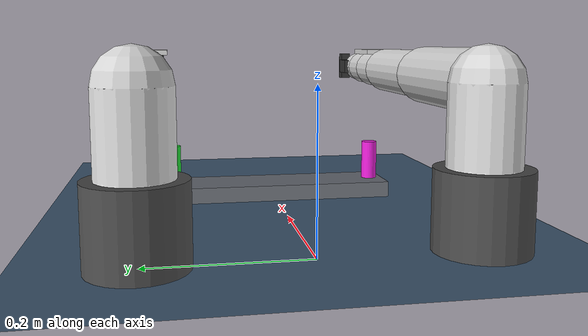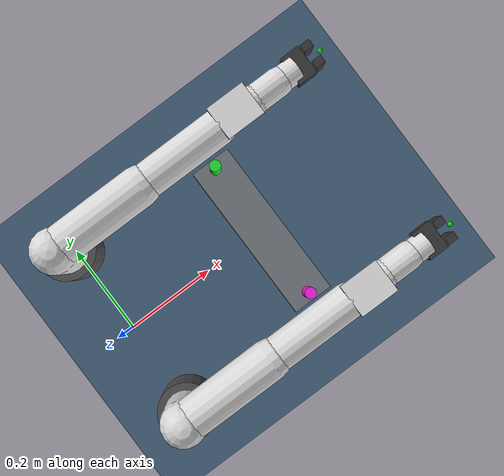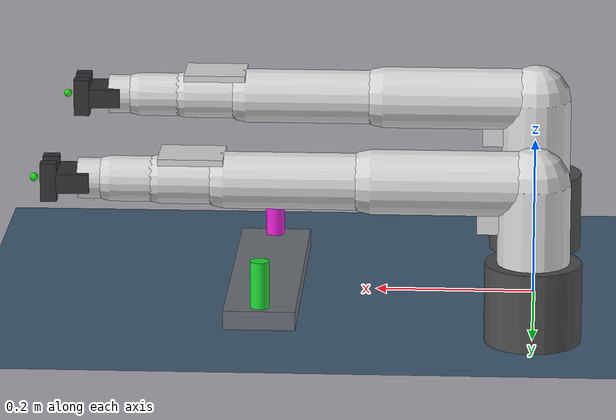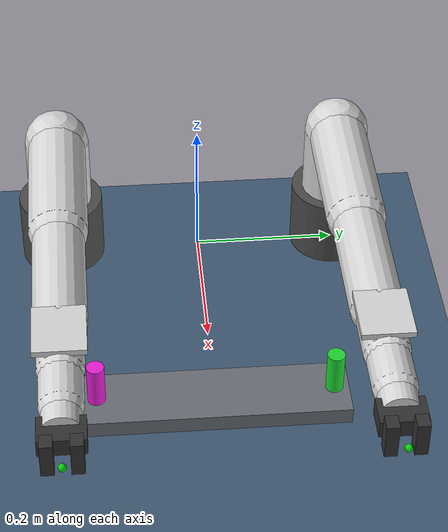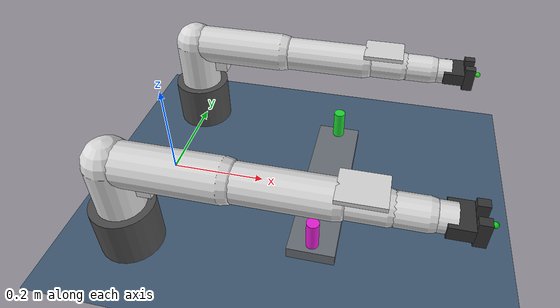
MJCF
<mujoco model="easytrainer_dual_arm_plank_world">
  <compiler angle="radian" autolimits="true"/>

  <option timestep="0.002" iterations="50" solver="Newton" tolerance="1e-8" gravity="0 0 -9.81"/>

  <visual>
    <headlight diffuse="0.6 0.6 0.6" ambient="0.3 0.3 0.3" specular="0 0 0"/>
    <rgba haze="0.15 0.25 0.35 1"/>
    <global azimuth="135" elevation="-25"/>
  </visual>

  <default>
    <default class="arm_link">
      <geom type="capsule" rgba="0.85 0.85 0.85 1" mass="0.5"
            contype="8" conaffinity="3" friction="1.0 0.005 0.001"/>
      <joint type="hinge" damping="2.0" armature="0.05" frictionloss="0.05"/>
    </default>
    <default class="arm_visual">
      <geom rgba="0.85 0.85 0.85 1" mass="0.0" contype="0" conaffinity="0"/>
    </default>
    <default class="gripper_finger">
      <geom type="box" size="0.010 0.008 0.024" rgba="0.2 0.2 0.2 1" mass="0.03"
            contype="4" conaffinity="3" friction="2.0 0.10 0.005" condim="6"/>
    </default>
  </default>

  <asset>
    <texture type="skybox" builtin="gradient" rgb1="0.5 0.7 0.9" rgb2="0.1 0.2 0.4" width="512" height="512"/>
    <texture name="floor_tex" type="2d" builtin="checker" rgb1="0.2 0.3 0.4" rgb2="0.3 0.4 0.5" width="300" height="300"/>
    <material name="floor_mat" texture="floor_tex" texrepeat="2 2" reflectance="0.1"/>
    <material name="lmarker_mat" rgba="0.20 0.55 0.95 1"/>
    <material name="rmarker_mat" rgba="0.95 0.55 0.10 1"/>
    <material name="plank_mat" rgba="0.42 0.44 0.47 1"/>
    <material name="handle_l_mat" rgba="0.12 0.85 0.20 1"/>
    <material name="handle_r_mat" rgba="0.92 0.12 0.85 1"/>
  </asset>

  <worldbody>
    <light name="top_light" pos="0.3 0 2.0" dir="0 0 -1" diffuse="0.7 0.7 0.7" specular="0.1 0.1 0.1"/>
    <light name="side_light" pos="0.8 0.8 1.5" dir="-0.5 -0.5 -1" diffuse="0.3 0.3 0.3"/>

    <geom name="floor" type="plane" size="3 3 0.1" material="floor_mat"
          contype="1" conaffinity="14" friction="1.0 0.005 0.001"/>

    <!-- ============================ LEFT ARM ============================ -->
    <!-- base offset +y 0.20 so each arm sits outboard of its plank handle.  -->
    <body name="left_base" pos="0 0.20 0.05">
      <geom type="cylinder" size="0.06 0.05" rgba="0.3 0.3 0.3 1" mass="2.0"
            contype="0" conaffinity="0"/>

      <body name="left_link1" pos="0 0 0.05" gravcomp="1">
        <joint name="left_joint1" class="arm_link" axis="0 0 1" range="-3.14 3.14"/>
        <geom class="arm_link" fromto="0 0 0  0 0 0.10" size="0.045"/>
        <geom class="arm_visual" type="box" size="0.025 0.012 0.012" pos="0.045 0 0.05"
              material="lmarker_mat"/>

        <body name="left_link2" pos="0 0 0.10" gravcomp="1">
          <joint name="left_joint2" class="arm_link" axis="0 -1 0" range="-1.57 1.57"/>
          <geom class="arm_link" fromto="0 0 0  0.20 0 0" size="0.04"/>

          <body name="left_link3" pos="0.20 0 0" gravcomp="1">
            <joint name="left_joint3" class="arm_link" axis="0 -1 0" range="-2.40 0.50"/>
            <geom class="arm_link" fromto="0 0 0  0.18 0 0" size="0.035"/>

            <body name="left_link4" pos="0.18 0 0" gravcomp="1">
              <joint name="left_joint4" class="arm_link" axis="1 0 0" range="-3.14 3.14"/>
              <geom class="arm_link" fromto="0 0 0  0.08 0 0" size="0.030"/>
              <geom class="arm_visual" type="box" size="0.040 0.034 0.004" pos="0.040 0 0.030"
                    material="lmarker_mat"/>

              <body name="left_link5" pos="0.08 0 0" gravcomp="1">
                <joint name="left_joint5" class="arm_link" axis="0 -1 0" range="-1.40 1.40"/>
                <geom class="arm_link" fromto="0 0 0  0.06 0 0" size="0.028"/>

                <body name="left_link6" pos="0.06 0 0" gravcomp="1">
                  <joint name="left_joint6" class="arm_link" axis="1 0 0" range="-3.14 3.14"/>
                  <geom class="arm_visual" type="cylinder" size="0.025 0.020"
                        pos="0.020 0 0" euler="0 1.5708 0" mass="0.2"/>

                  <body name="left_gripper_base" pos="0.045 0 0" gravcomp="1">
                    <geom type="box" size="0.020 0.030 0.012" rgba="0.2 0.2 0.2 1" mass="0.1"
                          contype="0" conaffinity="0"/>
                    <site name="left_ee_site" pos="0.05 0 0" size="0.005" rgba="0 1 0 0.8"/>

                    <camera name="left_wrist_cam" pos="-0.025 0 0.045"
                            xyaxes="0 -1 0  0.5 0 0.866" fovy="65"/>
                    <!-- Secondary wrist cam: side profile beside the gripper. -->
                    <camera name="left_wrist_cam2" pos="0.045 0.07 0.04"
                            xyaxes="-1 -0.07 0  0.05 -0.706 0.709" fovy="60"/>

                    <body name="left_finger_left" pos="0.030 0.018 0" gravcomp="1">
                      <joint name="left_gripper" type="slide" axis="0 1 0" range="0 0.04"
                             damping="50" frictionloss="0.05"/>
                      <geom class="gripper_finger"/>
                    </body>
                    <body name="left_finger_right" pos="0.030 -0.018 0" gravcomp="1">
                      <joint name="left_gripper_mirror" type="slide" axis="0 -1 0" range="0 0.04"
                             damping="50" frictionloss="0.05"/>
                      <geom class="gripper_finger"/>
                    </body>
                  </body>
                </body>
              </body>
            </body>
          </body>
        </body>
      </body>
    </body>

    <!-- ============================ RIGHT ARM =========================== -->
    <!-- base offset -y 0.20.                                               -->
    <body name="right_base" pos="0 -0.20 0.05">
      <geom type="cylinder" size="0.06 0.05" rgba="0.3 0.3 0.3 1" mass="2.0"
            contype="0" conaffinity="0"/>

      <body name="right_link1" pos="0 0 0.05" gravcomp="1">
        <joint name="right_joint1" class="arm_link" axis="0 0 1" range="-3.14 3.14"/>
        <geom class="arm_link" fromto="0 0 0  0 0 0.10" size="0.045"/>
        <geom class="arm_visual" type="box" size="0.025 0.012 0.012" pos="0.045 0 0.05"
              material="rmarker_mat"/>

        <body name="right_link2" pos="0 0 0.10" gravcomp="1">
          <joint name="right_joint2" class="arm_link" axis="0 -1 0" range="-1.57 1.57"/>
          <geom class="arm_link" fromto="0 0 0  0.20 0 0" size="0.04"/>

          <body name="right_link3" pos="0.20 0 0" gravcomp="1">
            <joint name="right_joint3" class="arm_link" axis="0 -1 0" range="-2.40 0.50"/>
            <geom class="arm_link" fromto="0 0 0  0.18 0 0" size="0.035"/>

            <body name="right_link4" pos="0.18 0 0" gravcomp="1">
              <joint name="right_joint4" class="arm_link" axis="1 0 0" range="-3.14 3.14"/>
              <geom class="arm_link" fromto="0 0 0  0.08 0 0" size="0.030"/>
              <geom class="arm_visual" type="box" size="0.040 0.034 0.004" pos="0.040 0 0.030"
                    material="rmarker_mat"/>

              <body name="right_link5" pos="0.08 0 0" gravcomp="1">
                <joint name="right_joint5" class="arm_link" axis="0 -1 0" range="-1.40 1.40"/>
                <geom class="arm_link" fromto="0 0 0  0.06 0 0" size="0.028"/>

                <body name="right_link6" pos="0.06 0 0" gravcomp="1">
                  <joint name="right_joint6" class="arm_link" axis="1 0 0" range="-3.14 3.14"/>
                  <geom class="arm_visual" type="cylinder" size="0.025 0.020"
                        pos="0.020 0 0" euler="0 1.5708 0" mass="0.2"/>

                  <body name="right_gripper_base" pos="0.045 0 0" gravcomp="1">
                    <geom type="box" size="0.020 0.030 0.012" rgba="0.2 0.2 0.2 1" mass="0.1"
                          contype="0" conaffinity="0"/>
                    <site name="right_ee_site" pos="0.05 0 0" size="0.005" rgba="0 1 0 0.8"/>

                    <camera name="right_wrist_cam" pos="-0.025 0 0.045"
                            xyaxes="0 -1 0  0.5 0 0.866" fovy="65"/>
                    <camera name="right_wrist_cam2" pos="0.045 0.07 0.04"
                            xyaxes="-1 -0.07 0  0.05 -0.706 0.709" fovy="60"/>

                    <body name="right_finger_left" pos="0.030 0.018 0" gravcomp="1">
                      <joint name="right_gripper" type="slide" axis="0 1 0" range="0 0.04"
                             damping="50" frictionloss="0.05"/>
                      <geom class="gripper_finger"/>
                    </body>
                    <body name="right_finger_right" pos="0.030 -0.018 0" gravcomp="1">
                      <joint name="right_gripper_mirror" type="slide" axis="0 -1 0" range="0 0.04"
                             damping="50" frictionloss="0.05"/>
                      <geom class="gripper_finger"/>
                    </body>
                  </body>
                </body>
              </body>
            </body>
          </body>
        </body>
      </body>
    </body>

    <!-- ===================== HANDLED PLANK (target) ===================== -->
    <body name="plank" pos="0.34 0 0.012">
      <freejoint name="plank_free"/>
      <geom name="plank_geom" type="box" size="0.045 0.18 0.012" material="plank_mat"
            contype="2" conaffinity="13" friction="1.0 0.05 0.005" condim="6" mass="0.6"/>
      <!-- Left handle: vertical post on top of the +Y end, green. -->
      <body name="handle_left" pos="0 0.16 0.042">
        <geom name="handle_left_geom" type="cylinder" size="0.012 0.030" material="handle_l_mat"
              contype="2" conaffinity="13" friction="2.0 0.1 0.005" condim="6" mass="0.04"/>
      </body>
      <!-- Right handle: vertical post on top of the -Y end, magenta. -->
      <body name="handle_right" pos="0 -0.16 0.042">
        <geom name="handle_right_geom" type="cylinder" size="0.012 0.030" material="handle_r_mat"
              contype="2" conaffinity="13" friction="2.0 0.1 0.005" condim="6" mass="0.04"/>
      </body>
    </body>
  </worldbody>

  <!-- One mirror equality per arm so a single gripper command drives both fingers. -->
  <equality>
    <joint joint1="left_gripper"  joint2="left_gripper_mirror"  polycoef="0 1 0 0 0"/>
    <joint joint1="right_gripper" joint2="right_gripper_mirror" polycoef="0 1 0 0 0"/>
  </equality>

  <!-- 14 position actuators: 7 per arm (6 arm joints + 1 gripper). -->
  <actuator>
    <position name="left_act_joint1" joint="left_joint1" kp="80"  kv="6"  ctrlrange="-3.14 3.14"/>
    <position name="left_act_joint2" joint="left_joint2" kp="120" kv="10" ctrlrange="-1.57 1.57"/>
    <position name="left_act_joint3" joint="left_joint3" kp="100" kv="8"  ctrlrange="-2.40 0.50"/>
    <position name="left_act_joint4" joint="left_joint4" kp="60"  kv="5"  ctrlrange="-3.14 3.14"/>
    <position name="left_act_joint5" joint="left_joint5" kp="50"  kv="4"  ctrlrange="-1.40 1.40"/>
    <position name="left_act_joint6" joint="left_joint6" kp="40"  kv="3"  ctrlrange="-3.14 3.14"/>
    <position name="left_act_gripper" joint="left_gripper" kp="400" kv="30" ctrlrange="0 0.04"/>

    <position name="right_act_joint1" joint="right_joint1" kp="80"  kv="6"  ctrlrange="-3.14 3.14"/>
    <position name="right_act_joint2" joint="right_joint2" kp="120" kv="10" ctrlrange="-1.57 1.57"/>
    <position name="right_act_joint3" joint="right_joint3" kp="100" kv="8"  ctrlrange="-2.40 0.50"/>
    <position name="right_act_joint4" joint="right_joint4" kp="60"  kv="5"  ctrlrange="-3.14 3.14"/>
    <position name="right_act_joint5" joint="right_joint5" kp="50"  kv="4"  ctrlrange="-1.40 1.40"/>
    <position name="right_act_joint6" joint="right_joint6" kp="40"  kv="3"  ctrlrange="-3.14 3.14"/>
    <position name="right_act_gripper" joint="right_gripper" kp="400" kv="30" ctrlrange="0 0.04"/>
  </actuator>

  <keyframe>
    <key name="home"
         qpos="0 0.55 -0.95 0 -0.65 0  0 0   0 0.55 -0.95 0 -0.65 0  0 0   0.34 0 0.012 1 0 0 0"
         ctrl="0 0.55 -0.95 0 -0.65 0  0    0 0.55 -0.95 0 -0.65 0  0"/>
  </keyframe>
</mujoco>
